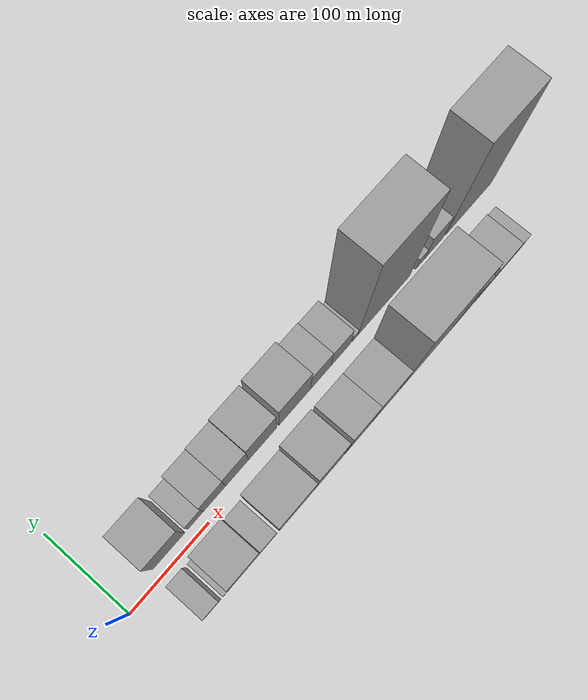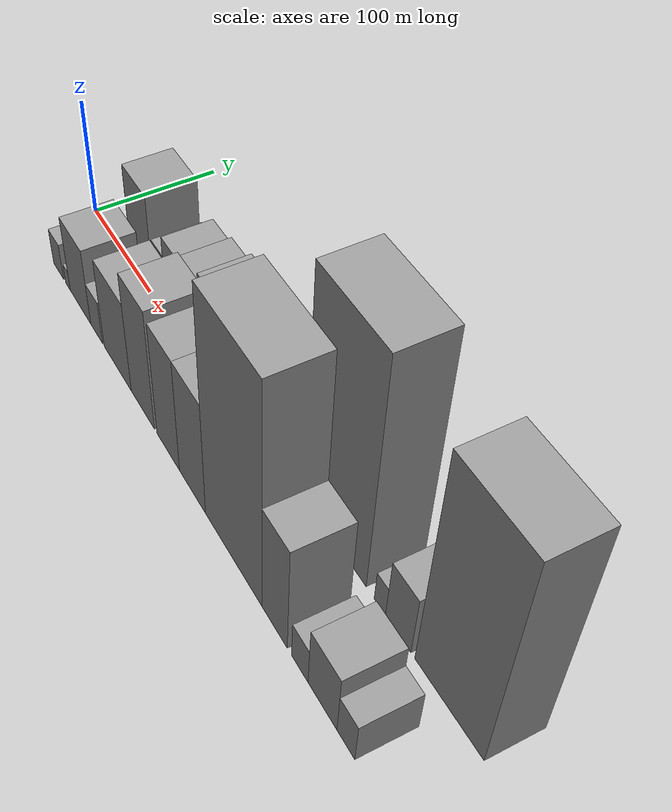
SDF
<sdf version="1.6">
 <world name="default">
  <scene>
   <sky><clouds><speed>12</speed></clouds></sky>
   <ambient>0.4 0.4 0.4 1</ambient>
   <background>0.7 0.7 0.7 1</background>
   <shadows>1</shadows>
  </scene>
  <gravity>0 0 -9.8066</gravity>
  <magnetic_field>6e-06 2.3e-05 -4.2e-05</magnetic_field>
  <physics default="0" name="default_physics" type="ode">
   <ode>
    <solver>
     <type>quick</type>
     <iters>10</iters>
     <sor>1.0</sor>
     <use_dynamic_moi_rescaling>0</use_dynamic_moi_rescaling>
    </solver>
    <constraints>
     <cfm>0</cfm>
     <erp>0.2</erp>
     <contact_max_correcting_vel>100</contact_max_correcting_vel>
     <contact_surface_layer>0.001</contact_surface_layer>
    </constraints>
   </ode>
   <max_step_size>0.004</max_step_size>
   <real_time_factor>1</real_time_factor>
   <real_time_update_rate>250</real_time_update_rate>
  </physics>
  <light name="sun" type="directional">
   <pose>0 0 10 0 0 0</pose>
   <diffuse>0.8 0.8 0.8 1</diffuse>
   <specular>0.2 0.2 0.2 1</specular>
   <attenuation>
    <range>1000</range>
    <constant>0.9</constant>
    <linear>0.01</linear>
    <quadratic>0.001</quadratic>
   </attenuation>
   <direction>-0.5 0.1 -0.9</direction>
  </light>
  <model name="building_1">
   <static>1</static>
   <pose>60.0417 30.0000 0 0.000000 0.000000 1.570796</pose>
   <link name="link">
    <pose>0 0 34.50 0 0 0</pose>
    <collision name="collision"><geometry><box><size>40.0000 40.0835 69.0000</size></box></geometry></collision>
    <visual name="visual">
     <cast_shadows>0</cast_shadows>
     <geometry><box><size>40.0000 40.0835 69.0000</size></box></geometry>
     <material>
      <script>
       <uri>model://grey_wall/materials/scripts</uri>
       <uri>model://grey_wall/materials/textures</uri>
       <name>vrc/grey_wall</name>
      </script>
     </material>
    </visual>
   </link>
  </model>
  <model name="building_2">
   <static>1</static>
   <pose>93.8343 30.0000 0 0.000000 0.000000 1.570796</pose>
   <link name="link">
    <pose>0 0 16.50 0 0 0</pose>
    <collision name="collision"><geometry><box><size>40.0000 19.5016 33.0000</size></box></geometry></collision>
    <visual name="visual">
     <cast_shadows>0</cast_shadows>
     <geometry><box><size>40.0000 19.5016 33.0000</size></box></geometry>
     <material>
      <script>
       <uri>model://grey_wall/materials/scripts</uri>
       <uri>model://grey_wall/materials/textures</uri>
       <name>vrc/grey_wall</name>
      </script>
     </material>
    </visual>
   </link>
  </model>
  <model name="building_3">
   <static>1</static>
   <pose>118.0130 30.0000 0 0.000000 0.000000 1.570796</pose>
   <link name="link">
    <pose>0 0 25.50 0 0 0</pose>
    <collision name="collision"><geometry><box><size>40.0000 28.8559 51.0000</size></box></geometry></collision>
    <visual name="visual">
     <cast_shadows>0</cast_shadows>
     <geometry><box><size>40.0000 28.8559 51.0000</size></box></geometry>
     <material>
      <script>
       <uri>model://grey_wall/materials/scripts</uri>
       <uri>model://grey_wall/materials/textures</uri>
       <name>vrc/grey_wall</name>
      </script>
     </material>
    </visual>
   </link>
  </model>
  <model name="building_4">
   <static>1</static>
   <pose>147.2258 30.0000 0 0.000000 0.000000 1.570796</pose>
   <link name="link">
    <pose>0 0 28.50 0 0 0</pose>
    <collision name="collision"><geometry><box><size>40.0000 29.5697 57.0000</size></box></geometry></collision>
    <visual name="visual">
     <cast_shadows>0</cast_shadows>
     <geometry><box><size>40.0000 29.5697 57.0000</size></box></geometry>
     <material>
      <script>
       <uri>model://grey_wall/materials/scripts</uri>
       <uri>model://grey_wall/materials/textures</uri>
       <name>vrc/grey_wall</name>
      </script>
     </material>
    </visual>
   </link>
  </model>
  <model name="building_5">
   <static>1</static>
   <pose>180.6834 30.0000 0 0.000000 0.000000 1.570796</pose>
   <link name="link">
    <pose>0 0 33.00 0 0 0</pose>
    <collision name="collision"><geometry><box><size>40.0000 37.3455 66.0000</size></box></geometry></collision>
    <visual name="visual">
     <cast_shadows>0</cast_shadows>
     <geometry><box><size>40.0000 37.3455 66.0000</size></box></geometry>
     <material>
      <script>
       <uri>model://grey_wall/materials/scripts</uri>
       <uri>model://grey_wall/materials/textures</uri>
       <name>vrc/grey_wall</name>
      </script>
     </material>
    </visual>
   </link>
  </model>
  <model name="building_6">
   <static>1</static>
   <pose>223.3771 30.0000 0 0.000000 0.000000 1.570796</pose>
   <link name="link">
    <pose>0 0 37.50 0 0 0</pose>
    <collision name="collision"><geometry><box><size>40.0000 42.0418 75.0000</size></box></geometry></collision>
    <visual name="visual">
     <cast_shadows>0</cast_shadows>
     <geometry><box><size>40.0000 42.0418 75.0000</size></box></geometry>
     <material>
      <script>
       <uri>model://grey_wall/materials/scripts</uri>
       <uri>model://grey_wall/materials/textures</uri>
       <name>vrc/grey_wall</name>
      </script>
     </material>
    </visual>
   </link>
  </model>
  <model name="building_7">
   <static>1</static>
   <pose>258.3676 30.0000 0 0.000000 0.000000 1.570796</pose>
   <link name="link">
    <pose>0 0 27.00 0 0 0</pose>
    <collision name="collision"><geometry><box><size>40.0000 27.9392 54.0000</size></box></geometry></collision>
    <visual name="visual">
     <cast_shadows>0</cast_shadows>
     <geometry><box><size>40.0000 27.9392 54.0000</size></box></geometry>
     <material>
      <script>
       <uri>model://grey_wall/materials/scripts</uri>
       <uri>model://grey_wall/materials/textures</uri>
       <name>vrc/grey_wall</name>
      </script>
     </material>
    </visual>
   </link>
  </model>
  <model name="building_8">
   <static>1</static>
   <pose>285.7887 30.0000 0 0.000000 0.000000 1.570796</pose>
   <link name="link">
    <pose>0 0 25.50 0 0 0</pose>
    <collision name="collision"><geometry><box><size>40.0000 26.9031 51.0000</size></box></geometry></collision>
    <visual name="visual">
     <cast_shadows>0</cast_shadows>
     <geometry><box><size>40.0000 26.9031 51.0000</size></box></geometry>
     <material>
      <script>
       <uri>model://grey_wall/materials/scripts</uri>
       <uri>model://grey_wall/materials/textures</uri>
       <name>vrc/grey_wall</name>
      </script>
     </material>
    </visual>
   </link>
  </model>
  <model name="building_9">
   <static>1</static>
   <pose>306.2290 30.0000 0 0.000000 0.000000 1.570796</pose>
   <link name="link">
    <pose>0 0 9.00 0 0 0</pose>
    <collision name="collision"><geometry><box><size>40.0000 7.9774 18.0000</size></box></geometry></collision>
    <visual name="visual">
     <cast_shadows>0</cast_shadows>
     <geometry><box><size>40.0000 7.9774 18.0000</size></box></geometry>
     <material>
      <script>
       <uri>model://grey_wall/materials/scripts</uri>
       <uri>model://grey_wall/materials/textures</uri>
       <name>vrc/grey_wall</name>
      </script>
     </material>
    </visual>
   </link>
  </model>
  <model name="building_10">
   <static>1</static>
   <pose>346.6961 30.0000 0 0.000000 0.000000 1.570796</pose>
   <link name="link">
    <pose>0 0 100.50 0 0 0</pose>
    <collision name="collision"><geometry><box><size>40.0000 72.9568 201.0000</size></box></geometry></collision>
    <visual name="visual">
     <cast_shadows>0</cast_shadows>
     <geometry><box><size>40.0000 72.9568 201.0000</size></box></geometry>
     <material>
      <script>
       <uri>model://grey_wall/materials/scripts</uri>
       <uri>model://grey_wall/materials/textures</uri>
       <name>vrc/grey_wall</name>
      </script>
     </material>
    </visual>
   </link>
  </model>
  <model name="building_11">
   <static>1</static>
   <pose>398.4116 30.0000 0 0.000000 0.000000 1.570796</pose>
   <link name="link">
    <pose>0 0 13.50 0 0 0</pose>
    <collision name="collision"><geometry><box><size>40.0000 12.4742 27.0000</size></box></geometry></collision>
    <visual name="visual">
     <cast_shadows>0</cast_shadows>
     <geometry><box><size>40.0000 12.4742 27.0000</size></box></geometry>
     <material>
      <script>
       <uri>model://grey_wall/materials/scripts</uri>
       <uri>model://grey_wall/materials/textures</uri>
       <name>vrc/grey_wall</name>
      </script>
     </material>
    </visual>
   </link>
  </model>
  <model name="building_12">
   <static>1</static>
   <pose>418.2491 30.0000 0 0.000000 0.000000 1.570796</pose>
   <link name="link">
    <pose>0 0 27.00 0 0 0</pose>
    <collision name="collision"><geometry><box><size>40.0000 27.2007 54.0000</size></box></geometry></collision>
    <visual name="visual">
     <cast_shadows>0</cast_shadows>
     <geometry><box><size>40.0000 27.2007 54.0000</size></box></geometry>
     <material>
      <script>
       <uri>model://grey_wall/materials/scripts</uri>
       <uri>model://grey_wall/materials/textures</uri>
       <name>vrc/grey_wall</name>
      </script>
     </material>
    </visual>
   </link>
  </model>
  <model name="building_13">
   <static>1</static>
   <pose>469.8617 30.0000 0 0.000000 0.000000 1.570796</pose>
   <link name="link">
    <pose>0 0 94.50 0 0 0</pose>
    <collision name="collision"><geometry><box><size>40.0000 68.0245 189.0000</size></box></geometry></collision>
    <visual name="visual">
     <cast_shadows>0</cast_shadows>
     <geometry><box><size>40.0000 68.0245 189.0000</size></box></geometry>
     <material>
      <script>
       <uri>model://grey_wall/materials/scripts</uri>
       <uri>model://grey_wall/materials/textures</uri>
       <name>vrc/grey_wall</name>
      </script>
     </material>
    </visual>
   </link>
  </model>
  <model name="building_14">
   <static>1</static>
   <pose>49.6738 -30.0000 0 0.000000 0.000000 1.570796</pose>
   <link name="link">
    <pose>0 0 16.50 0 0 0</pose>
    <collision name="collision"><geometry><box><size>40.0000 19.3477 33.0000</size></box></geometry></collision>
    <visual name="visual">
     <cast_shadows>0</cast_shadows>
     <geometry><box><size>40.0000 19.3477 33.0000</size></box></geometry>
     <material>
      <script>
       <uri>model://grey_wall/materials/scripts</uri>
       <uri>model://grey_wall/materials/textures</uri>
       <name>vrc/grey_wall</name>
      </script>
     </material>
    </visual>
   </link>
  </model>
  <model name="building_15">
   <static>1</static>
   <pose>67.7921 -30.0000 0 0.000000 0.000000 1.570796</pose>
   <link name="link">
    <pose>0 0 9.00 0 0 0</pose>
    <collision name="collision"><geometry><box><size>40.0000 8.8889 18.0000</size></box></geometry></collision>
    <visual name="visual">
     <cast_shadows>0</cast_shadows>
     <geometry><box><size>40.0000 8.8889 18.0000</size></box></geometry>
     <material>
      <script>
       <uri>model://grey_wall/materials/scripts</uri>
       <uri>model://grey_wall/materials/textures</uri>
       <name>vrc/grey_wall</name>
      </script>
     </material>
    </visual>
   </link>
  </model>
  <model name="building_16">
   <static>1</static>
   <pose>91.3088 -30.0000 0 0.000000 0.000000 1.570796</pose>
   <link name="link">
    <pose>0 0 34.50 0 0 0</pose>
    <collision name="collision"><geometry><box><size>40.0000 38.1445 69.0000</size></box></geometry></collision>
    <visual name="visual">
     <cast_shadows>0</cast_shadows>
     <geometry><box><size>40.0000 38.1445 69.0000</size></box></geometry>
     <material>
      <script>
       <uri>model://grey_wall/materials/scripts</uri>
       <uri>model://grey_wall/materials/textures</uri>
       <name>vrc/grey_wall</name>
      </script>
     </material>
    </visual>
   </link>
  </model>
  <model name="building_17">
   <static>1</static>
   <pose>120.7764 -30.0000 0 0.000000 0.000000 1.570796</pose>
   <link name="link">
    <pose>0 0 19.50 0 0 0</pose>
    <collision name="collision"><geometry><box><size>40.0000 20.7908 39.0000</size></box></geometry></collision>
    <visual name="visual">
     <cast_shadows>0</cast_shadows>
     <geometry><box><size>40.0000 20.7908 39.0000</size></box></geometry>
     <material>
      <script>
       <uri>model://grey_wall/materials/scripts</uri>
       <uri>model://grey_wall/materials/textures</uri>
       <name>vrc/grey_wall</name>
      </script>
     </material>
    </visual>
   </link>
  </model>
  <model name="building_18">
   <static>1</static>
   <pose>157.1958 -30.0000 0 0.000000 0.000000 1.570796</pose>
   <link name="link">
    <pose>0 0 40.50 0 0 0</pose>
    <collision name="collision"><geometry><box><size>40.0000 46.0478 81.0000</size></box></geometry></collision>
    <visual name="visual">
     <cast_shadows>0</cast_shadows>
     <geometry><box><size>40.0000 46.0478 81.0000</size></box></geometry>
     <material>
      <script>
       <uri>model://grey_wall/materials/scripts</uri>
       <uri>model://grey_wall/materials/textures</uri>
       <name>vrc/grey_wall</name>
      </script>
     </material>
    </visual>
   </link>
  </model>
  <model name="building_19">
   <static>1</static>
   <pose>198.6866 -30.0000 0 0.000000 0.000000 1.570796</pose>
   <link name="link">
    <pose>0 0 54.00 0 0 0</pose>
    <collision name="collision"><geometry><box><size>40.0000 36.9339 108.0000</size></box></geometry></collision>
    <visual name="visual">
     <cast_shadows>0</cast_shadows>
     <geometry><box><size>40.0000 36.9339 108.0000</size></box></geometry>
     <material>
      <script>
       <uri>model://grey_wall/materials/scripts</uri>
       <uri>model://grey_wall/materials/textures</uri>
       <name>vrc/grey_wall</name>
      </script>
     </material>
    </visual>
   </link>
  </model>
  <model name="building_20">
   <static>1</static>
   <pose>238.1569 -30.0000 0 0.000000 0.000000 1.570796</pose>
   <link name="link">
    <pose>0 0 51.00 0 0 0</pose>
    <collision name="collision"><geometry><box><size>40.0000 34.0068 102.0000</size></box></geometry></collision>
    <visual name="visual">
     <cast_shadows>0</cast_shadows>
     <geometry><box><size>40.0000 34.0068 102.0000</size></box></geometry>
     <material>
      <script>
       <uri>model://grey_wall/materials/scripts</uri>
       <uri>model://grey_wall/materials/textures</uri>
       <name>vrc/grey_wall</name>
      </script>
     </material>
    </visual>
   </link>
  </model>
  <model name="building_21">
   <static>1</static>
   <pose>273.7843 -30.0000 0 0.000000 0.000000 1.570796</pose>
   <link name="link">
    <pose>0 0 51.00 0 0 0</pose>
    <collision name="collision"><geometry><box><size>40.0000 37.2479 102.0000</size></box></geometry></collision>
    <visual name="visual">
     <cast_shadows>0</cast_shadows>
     <geometry><box><size>40.0000 37.2479 102.0000</size></box></geometry>
     <material>
      <script>
       <uri>model://grey_wall/materials/scripts</uri>
       <uri>model://grey_wall/materials/textures</uri>
       <name>vrc/grey_wall</name>
      </script>
     </material>
    </visual>
   </link>
  </model>
  <model name="building_22">
   <static>1</static>
   <pose>329.4310 -30.0000 0 0.000000 0.000000 1.570796</pose>
   <link name="link">
    <pose>0 0 99.00 0 0 0</pose>
    <collision name="collision"><geometry><box><size>40.0000 74.0456 198.0000</size></box></geometry></collision>
    <visual name="visual">
     <cast_shadows>0</cast_shadows>
     <geometry><box><size>40.0000 74.0456 198.0000</size></box></geometry>
     <material>
      <script>
       <uri>model://grey_wall/materials/scripts</uri>
       <uri>model://grey_wall/materials/textures</uri>
       <name>vrc/grey_wall</name>
      </script>
     </material>
    </visual>
   </link>
  </model>
  <model name="building_23">
   <static>1</static>
   <pose>381.7423 -30.0000 0 0.000000 0.000000 1.570796</pose>
   <link name="link">
    <pose>0 0 48.00 0 0 0</pose>
    <collision name="collision"><geometry><box><size>40.0000 30.5769 96.0000</size></box></geometry></collision>
    <visual name="visual">
     <cast_shadows>0</cast_shadows>
     <geometry><box><size>40.0000 30.5769 96.0000</size></box></geometry>
     <material>
      <script>
       <uri>model://grey_wall/materials/scripts</uri>
       <uri>model://grey_wall/materials/textures</uri>
       <name>vrc/grey_wall</name>
      </script>
     </material>
    </visual>
   </link>
  </model>
  <model name="building_24">
   <static>1</static>
   <pose>411.4692 -30.0000 0 0.000000 0.000000 1.570796</pose>
   <link name="link">
    <pose>0 0 16.50 0 0 0</pose>
    <collision name="collision"><geometry><box><size>40.0000 18.8770 33.0000</size></box></geometry></collision>
    <visual name="visual">
     <cast_shadows>0</cast_shadows>
     <geometry><box><size>40.0000 18.8770 33.0000</size></box></geometry>
     <material>
      <script>
       <uri>model://grey_wall/materials/scripts</uri>
       <uri>model://grey_wall/materials/textures</uri>
       <name>vrc/grey_wall</name>
      </script>
     </material>
    </visual>
   </link>
  </model>
  <model name="building_25">
   <static>1</static>
   <pose>436.7880 -30.0000 0 0.000000 0.000000 1.570796</pose>
   <link name="link">
    <pose>0 0 27.00 0 0 0</pose>
    <collision name="collision"><geometry><box><size>40.0000 31.7606 54.0000</size></box></geometry></collision>
    <visual name="visual">
     <cast_shadows>0</cast_shadows>
     <geometry><box><size>40.0000 31.7606 54.0000</size></box></geometry>
     <material>
      <script>
       <uri>model://grey_wall/materials/scripts</uri>
       <uri>model://grey_wall/materials/textures</uri>
       <name>vrc/grey_wall</name>
      </script>
     </material>
    </visual>
   </link>
  </model>
  <model name="building_26">
   <static>1</static>
   <pose>462.1056 -30.0000 0 0.000000 0.000000 1.570796</pose>
   <link name="link">
    <pose>0 0 18.00 0 0 0</pose>
    <collision name="collision"><geometry><box><size>40.0000 18.8747 36.0000</size></box></geometry></collision>
    <visual name="visual">
     <cast_shadows>0</cast_shadows>
     <geometry><box><size>40.0000 18.8747 36.0000</size></box></geometry>
     <material>
      <script>
       <uri>model://grey_wall/materials/scripts</uri>
       <uri>model://grey_wall/materials/textures</uri>
       <name>vrc/grey_wall</name>
      </script>
     </material>
    </visual>
   </link>
  </model>
 </world>
</sdf>
